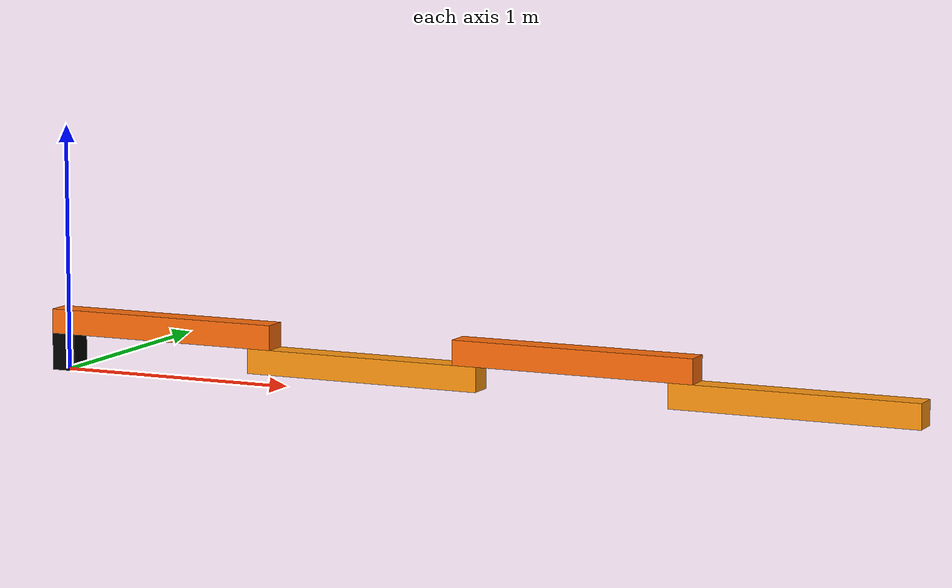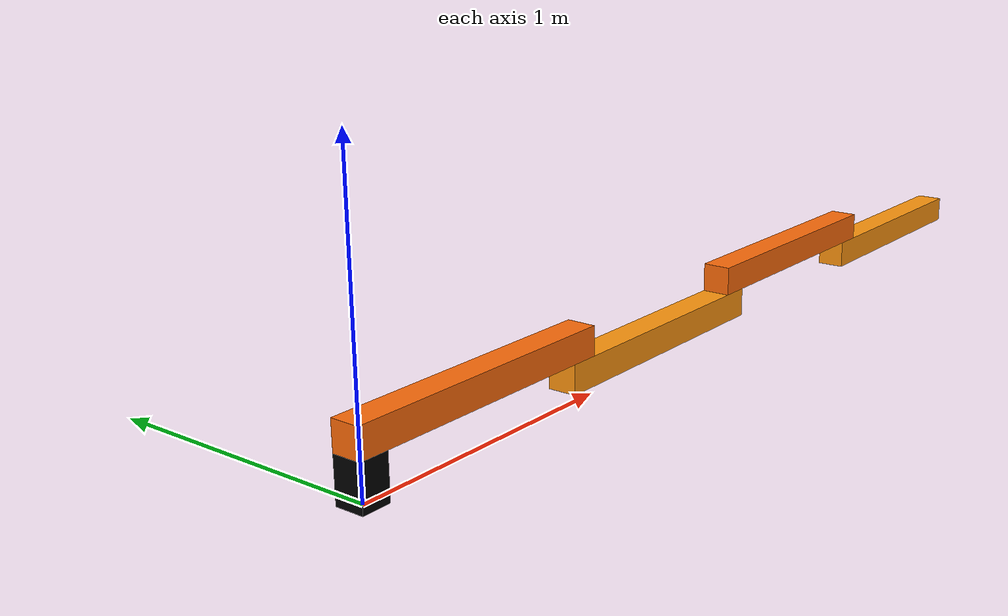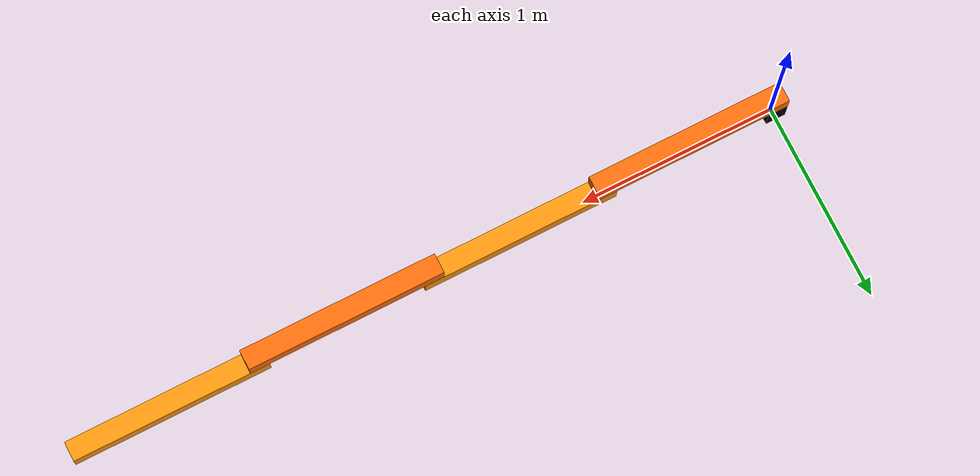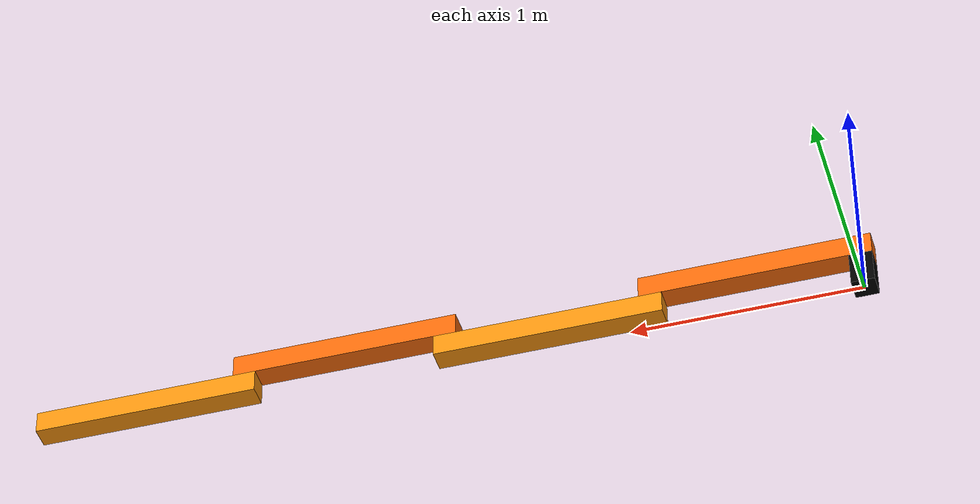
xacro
<?xml version="1.0"?>
<!-- Revolute-Revolute Manipulator -->
<robot name="planar_bot" xmlns:xacro="http://www.ros.org/wiki/xacro">

  <!-- Constants for robot dimensions -->
  <xacro:property name="PI" value="3.1415926535897931"/>
  <xacro:property name="mass" value="1" /> <!-- arbitrary value for mass -->
  <xacro:property name="width" value="0.1" /> <!-- Square dimensions (widthxwidth) of beams -->
  <xacro:property name="length" value="1" /> <!-- Link length -->
  <xacro:property name="axel_offset" value="0.05" /> <!-- Space btw top of beam and the each joint -->

  <!-- Import all Gazebo-customization elements, including Gazebo colors -->
  <xacro:include filename="$(find planar_bot_description)/urdf/planar_bot.gazebo" />
  <!-- Import Rviz colors -->
  <xacro:include filename="$(find planar_bot_description)/urdf/materials.xacro" />

  <!-- Used for fixing robot to Gazebo 'base_link' -->
  <link name="world"/>

  <joint name="fixed" type="fixed">
    <parent link="world"/>
    <child link="base_link"/>
  </joint>

  <!-- Base Link -->
  <link name="base_link">
    <collision>
      <origin xyz="0 0 ${0.75*width}" rpy="0 0 0"/>
      <geometry>
        <box size="${width} ${width} ${1.5*width}"/>
      </geometry>
    </collision>

    <visual>
      <origin xyz="0 0 ${0.75*width}" rpy="0 0 0"/>
      <geometry>
        <box size="${width} ${width} ${1.5*width}"/>
      </geometry>
      <material name="black"/>
    </visual>

    <inertial>
      <origin xyz="0 0 ${0.75*width}" rpy="0 0 0"/>
      <mass value="${mass}"/>
      <inertia
        ixx="1.0" ixy="0.0" ixz="0.0"
        iyy="1.0" iyz="0.0"
        izz="1.0"/>
    </inertial>
  </link>

  <link name="link1">
    <collision>
      <origin xyz="${length/2 - axel_offset} 0 0" rpy="0 0 0"/>
      <geometry>
        <box size="${length} ${width} ${width}"/>
      </geometry>
    </collision>

    <visual>
      <origin xyz="${length/2 - axel_offset} 0 0" rpy="0 0 0"/>
      <geometry>
        <box size="${length} ${width} ${width}"/>
      </geometry>
      <material name="orange"/>
    </visual>

    <inertial>
      <origin xyz="${length/2 - axel_offset} 0 0" rpy="0 0 0"/>
      <mass value="${mass}"/>
      <inertia
        ixx="${mass / 12.0 * (width*width + width*width)}" ixy="0.0" ixz="0.0"
        iyy="${mass / 12.0 * (length*length + width*width)}" iyz="0.0"
        izz="${mass / 12.0 * (length*length + width*width)}"/>
    </inertial>
  </link>

  <link name="link2">
    <collision>
      <origin xyz="${length/2 - axel_offset} 0 0" rpy="0 0 0"/>
      <geometry>
        <box size="${length} ${width} ${width}"/>
      </geometry>
    </collision>

    <visual>
      <origin xyz="${length/2 - axel_offset} 0 0" rpy="0 0 0"/>
      <geometry>
        <box size="${length} ${width} ${width}"/>
      </geometry>
      <material name="yellow"/>
    </visual>

    <inertial>
      <origin xyz="${length/2 - axel_offset} 0 0" rpy="0 0 0"/>
      <mass value="${mass}"/>
      <inertia
        ixx="${mass / 12.0 * (width*width + width*width)}" ixy="0.0" ixz="0.0"
        iyy="${mass / 12.0 * (length*length + width*width)}" iyz="0.0"
        izz="${mass / 12.0 * (length*length + width*width)}"/>
    </inertial>
  </link>

  <link name="link3">
    <collision>
      <origin xyz="${length/2 - axel_offset} 0 0" rpy="0 0 0"/>
      <geometry>
        <box size="${length} ${width} ${width}"/>
      </geometry>
    </collision>

    <visual>
      <origin xyz="${length/2 - axel_offset} 0 0" rpy="0 0 0"/>
      <geometry>
        <box size="${length} ${width} ${width}"/>
      </geometry>
      <material name="orange"/>
    </visual>

    <inertial>
      <origin xyz="${length/2 - axel_offset} 0 0" rpy="0 0 0"/>
      <mass value="${mass}"/>
      <inertia
        ixx="${mass / 12.0 * (width*width + width*width)}" ixy="0.0" ixz="0.0"
        iyy="${mass / 12.0 * (length*length + width*width)}" iyz="0.0"
        izz="${mass / 12.0 * (length*length + width*width)}"/>
    </inertial>
  </link>

  <link name="link4">
    <collision>
      <origin xyz="${length/2 - axel_offset} 0 0" rpy="0 0 0"/>
      <geometry>
        <box size="${length} ${width} ${width}"/>
      </geometry>
    </collision>

    <visual>
      <origin xyz="${length/2 - axel_offset} 0 0" rpy="0 0 0"/>
      <geometry>
        <box size="${length} ${width} ${width}"/>
      </geometry>
      <material name="yellow"/>
    </visual>

    <inertial>
      <origin xyz="${length/2 - axel_offset} 0 0" rpy="0 0 0"/>
      <mass value="${mass}"/>
      <inertia
        ixx="${mass / 12.0 * (width*width + width*width)}" ixy="0.0" ixz="0.0"
        iyy="${mass / 12.0 * (length*length + width*width)}" iyz="0.0"
        izz="${mass / 12.0 * (length*length + width*width)}"/>
    </inertial>
  </link>

  <joint name="joint1" type="revolute">
    <parent link="base_link"/>
    <child link="link1"/>
    <origin xyz="0 0 ${2*width}" rpy="0 0 0"/>
    <axis xyz="0 0 1"/>
    <dynamics damping="0.7"/>
    <limit effort="80" velocity="8.0" lower="-0.3" upper="3.45" />
  </joint>

  <joint name="joint2" type="revolute">
    <parent link="link1"/>
    <child link="link2"/>
    <origin xyz="${length - axel_offset*2} 0 ${-width}" rpy="0 0 0"/>
    <axis xyz="0 0 1"/>
    <dynamics damping="0.7"/>
    <limit effort="80" velocity="8.0" lower="-3.0" upper="3.0" />
  </joint>

  <joint name="joint3" type="revolute">
    <parent link="link2"/>
    <child link="link3"/>
    <origin xyz="${length - axel_offset*2} 0 ${width}" rpy="0 0 0"/>
    <axis xyz="0 0 1"/>
    <dynamics damping="0.7"/>
    <limit effort="80" velocity="8.0" lower="-3.0" upper="3.0" />
  </joint>

  <joint name="joint4" type="revolute">
    <parent link="link3"/>
    <child link="link4"/>
    <origin xyz="${length - axel_offset*2} 0 ${-width}" rpy="0 0 0"/>
    <axis xyz="0 0 1"/>
    <dynamics damping="0.7"/>
    <limit effort="80" velocity="8.0" lower="-3.0" upper="3.0" />
  </joint>

  <transmission name="tran1">
    <type>transmission_interface/SimpleTransmission</type>
    <joint name="joint1">
      <hardwareInterface>hardware_interface/EffortJointInterface</hardwareInterface>
    </joint>
    <actuator name="motor1">
      <hardwareInterface>hardware_interface/EffortJointInterface</hardwareInterface>
      <mechanicalReduction>1</mechanicalReduction>
    </actuator>
  </transmission>

  <transmission name="tran2">
    <type>transmission_interface/SimpleTransmission</type>
    <joint name="joint2">
      <hardwareInterface>hardware_interface/EffortJointInterface</hardwareInterface>
    </joint>
    <actuator name="motor2">
      <hardwareInterface>hardware_interface/EffortJointInterface</hardwareInterface>
      <mechanicalReduction>1</mechanicalReduction>
    </actuator>
  </transmission>

  <transmission name="tran3">
    <type>transmission_interface/SimpleTransmission</type>
    <joint name="joint3">
      <hardwareInterface>hardware_interface/EffortJointInterface</hardwareInterface>
    </joint>
    <actuator name="motor3">
      <hardwareInterface>hardware_interface/EffortJointInterface</hardwareInterface>
      <mechanicalReduction>1</mechanicalReduction>
    </actuator>
  </transmission>

  <transmission name="tran4">
    <type>transmission_interface/SimpleTransmission</type>
    <joint name="joint4">
      <hardwareInterface>hardware_interface/EffortJointInterface</hardwareInterface>
    </joint>
    <actuator name="motor4">
      <hardwareInterface>hardware_interface/EffortJointInterface</hardwareInterface>
      <mechanicalReduction>1</mechanicalReduction>
    </actuator>
  </transmission>

</robot>

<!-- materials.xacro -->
<robot>

  <material name="black">
    <color rgba="0.0 0.0 0.0 1.0"/>
  </material>

  <material name="blue">
    <color rgba="0.0 0.0 0.8 1.0"/>
  </material>

  <material name="green">
    <color rgba="0.0 0.8 0.0 1.0"/>
  </material>

  <material name="yellow">
    <color rgba="${255/255} ${150/255} ${15/255} 1.0"/>
  </material>

  <material name="grey">
    <color rgba="0.2 0.2 0.2 1.0"/>
  </material>

  <material name="orange">
    <color rgba="${255/255} ${108/255} ${10/255} 1.0"/>
  </material>

  <material name="brown">
    <color rgba="${222/255} ${207/255} ${195/255} 1.0"/>
  </material>

  <material name="red">
    <color rgba="0.8 0.0 0.0 1.0"/>
  </material>

  <material name="white">
    <color rgba="1.0 1.0 1.0 1.0"/>
  </material>

</robot>
